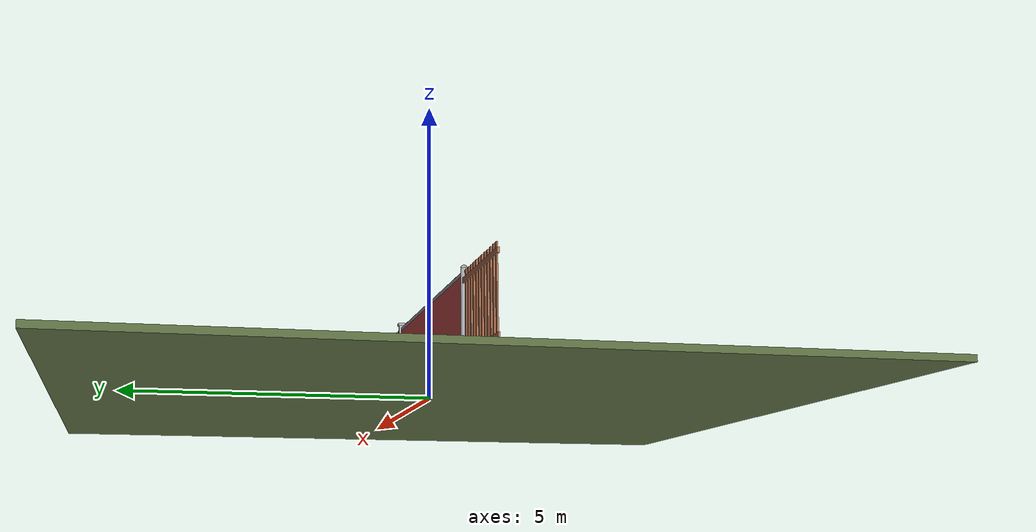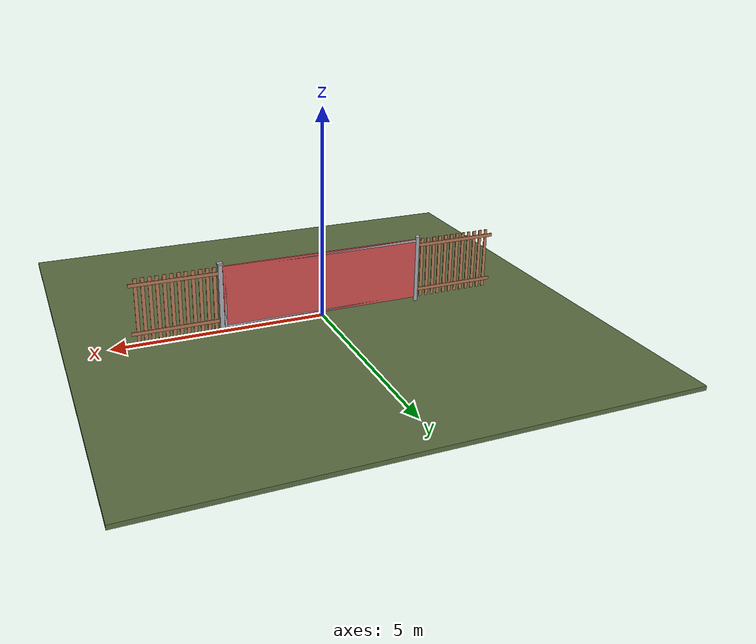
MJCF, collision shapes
<?xml version="1.0" ?>
<mujoco model="db0859_gate_swing_full">
  <compiler angle="radian" meshdir="../../hardware" texturedir="../../textures" autolimits="true" inertiafromgeom="false"/>
  <option timestep="0.002" integrator="implicitfast" cone="elliptic" impratio="10" noslip_iterations="3">
    <flag multiccd="enable"/>
  </option>
  <size memory="16M"/>
  <default>
    <geom condim="4" solref="0.005 1" solimp="0.95 0.99 0.001"/>
    <joint solreflimit="0.005 1" solimplimit="0.95 0.99 0.001"/>
    <tendon solreflimit="0.005 1"/>
    <equality solref="0.002 1"/>
  </default>
  <visual>
    <headlight ambient="0.4 0.4 0.4" diffuse="0.7 0.7 0.7" specular="0.2 0.2 0.2"/>
    <quality shadowsize="4096"/>
    <map znear="0.01" zfar="60"/>
  </visual>
  <asset>
    <mesh name="strap_hinge_3c1a7c1a5f" file="strap_hinge_3c1a7c1a5f.obj"/>
    <material name="mat_floor" rgba="0.35 0.42 0.25 1" specular="0.2" shininess="0.15" reflectance="0"/>
    <material name="mat_wall" rgba="0.78 0.76 0.7 1" specular="0.2" shininess="0.1" reflectance="0"/>
    <material name="mat_leaf" rgba="0.65 0.66 0.68 1" specular="0.74" shininess="0.5" reflectance="0.36"/>
    <material name="mat_hinge" rgba="0.65 0.66 0.68 1" specular="0.74" shininess="0.5" reflectance="0.36"/>
    <material name="mat_op_steel_galvanized" rgba="0.65 0.66 0.68 1" specular="0.74" shininess="0.5" reflectance="0.36"/>
    <material name="mat_frame" rgba="0.65 0.66 0.68 1" specular="0.74" shininess="0.5" reflectance="0.36"/>
    <material name="mat_fence" rgba="0.7 0.45 0.32 1" specular="0.2" shininess="0.4" reflectance="0"/>
    <texture name="skybox" type="skybox" builtin="gradient" rgb1="0.6 0.7 0.85" rgb2="0.9 0.92 0.95" width="256" height="256"/>
  </asset>
  <worldbody>
    <light name="sun" pos="1.5 -2.5 4" dir="-0.3 0.5 -0.8" directional="true" diffuse="0.8 0.8 0.8" specular="0.3 0.3 0.3" castshadow="true"/>
    <light name="fill" pos="-1.5 2.5 3" dir="0.3 -0.5 -0.7" directional="true" diffuse="0.35 0.35 0.4" castshadow="false"/>
    <camera name="robot_view" pos="0 -5.13625 2.19815" xyaxes="1 0 0 0 0.26963 0.962964" fovy="52"/>
    <camera name="far_view" pos="0 5.13625 2.19815" xyaxes="-1 0 0 0 -0.26963 0.962964" fovy="52"/>
    <camera name="iso" pos="3.90355 -4.31445 3.01995" xyaxes="0.741536 0.670913 0 -0.242917 0.268487 0.932151" fovy="46"/>
    <camera name="detail_handle" pos="2.539 -0.92 1.28" xyaxes="0.97561 0.219512 0 -0.070934 0.315262 0.94635" fovy="38"/>
    <geom name="floor" type="box" size="6 6 0.05" pos="0 0 -0.05" material="mat_floor" group="0" contype="1" conaffinity="1" friction="0.8 0.005 0.0001" density="2400"/>
    <geom name="hinge_pintle_0" type="cylinder" size="0.008 0.02" pos="-2.403 -0.05 0.224" material="mat_hinge" group="1" contype="0" conaffinity="0" density="7850"/>
    <geom name="hinge_pintle_1" type="cylinder" size="0.008 0.02" pos="-2.403 -0.05 1.424" material="mat_hinge" group="1" contype="0" conaffinity="0" density="7850"/>
    <geom name="leaf_slide_bolt_keeper_leg_n" type="box" size="0.007 0.0025 0.017" pos="2.426 -0.067 0.9845" quat="0.707107 0.707107 0 0" material="mat_op_steel_galvanized" group="0" contype="1" conaffinity="1" friction="0.6 0.005 0.0001" density="7800"/>
    <geom name="leaf_slide_bolt_keeper_leg_p" type="box" size="0.007 0.0025 0.017" pos="2.426 -0.067 1.0155" quat="0.707107 0.707107 0 0" material="mat_op_steel_galvanized" group="0" contype="1" conaffinity="1" friction="0.6 0.005 0.0001" density="7800"/>
    <geom name="leaf_slide_bolt_keeper_bridge" type="box" size="0.007 0.018 0.0025" pos="2.426 -0.0815 1" quat="0.707107 0.707107 0 0" material="mat_op_steel_galvanized" group="0" contype="1" conaffinity="1" friction="0.6 0.005 0.0001" density="7800"/>
    <geom name="leaf_slide_bolt_keeper_base" type="box" size="0.015 0.024 0.001" pos="2.426 -0.051 1" quat="0.707107 0.707107 0 0" material="mat_op_steel_galvanized" group="1" contype="0" conaffinity="0" density="7800"/>
    <geom name="post_hinge" type="cylinder" size="0.05 0.825" pos="-2.456 0 0.825" material="mat_frame" group="0" contype="1" conaffinity="1" friction="0.6 0.005 0.0001" density="800"/>
    <geom name="post_hinge_cap" type="sphere" size="0.05" pos="-2.456 0 1.65" material="mat_frame" group="1" contype="0" conaffinity="0" density="800"/>
    <geom name="post_latch" type="box" size="0.05 0.05 0.825" pos="2.456 0 0.825" material="mat_frame" group="0" contype="1" conaffinity="1" friction="0.6 0.005 0.0001" density="800"/>
    <geom name="post_latch_cap" type="box" size="0.065 0.065 0.02" pos="2.456 0 1.67" material="mat_frame" group="1" contype="0" conaffinity="0" density="800"/>
    <geom name="gate_stop" type="box" size="0.02 0.012 0.06" pos="2.386 0.0345 0.35" material="mat_frame" group="0" contype="1" conaffinity="1" friction="0.6 0.005 0.0001" density="800"/>
    <geom name="fence_picket_l_0" type="box" size="0.04 0.01 0.75" pos="-2.586 0 0.85" material="mat_fence" group="0" contype="1" conaffinity="1" friction="0.6 0.005 0.0001" density="400"/>
    <geom name="fence_picket_l_1" type="box" size="0.04 0.01 0.75" pos="-2.746 0 0.85" material="mat_fence" group="0" contype="1" conaffinity="1" friction="0.6 0.005 0.0001" density="400"/>
    <geom name="fence_picket_l_2" type="box" size="0.04 0.01 0.75" pos="-2.906 0 0.85" material="mat_fence" group="0" contype="1" conaffinity="1" friction="0.6 0.005 0.0001" density="400"/>
    <geom name="fence_picket_l_3" type="box" size="0.04 0.01 0.75" pos="-3.066 0 0.85" material="mat_fence" group="0" contype="1" conaffinity="1" friction="0.6 0.005 0.0001" density="400"/>
    <geom name="fence_picket_l_4" type="box" size="0.04 0.01 0.75" pos="-3.226 0 0.85" material="mat_fence" group="0" contype="1" conaffinity="1" friction="0.6 0.005 0.0001" density="400"/>
    <geom name="fence_picket_l_5" type="box" size="0.04 0.01 0.75" pos="-3.386 0 0.85" material="mat_fence" group="0" contype="1" conaffinity="1" friction="0.6 0.005 0.0001" density="400"/>
    <geom name="fence_picket_l_6" type="box" size="0.04 0.01 0.75" pos="-3.546 0 0.85" material="mat_fence" group="0" contype="1" conaffinity="1" friction="0.6 0.005 0.0001" density="400"/>
    <geom name="fence_picket_l_7" type="box" size="0.04 0.01 0.75" pos="-3.706 0 0.85" material="mat_fence" group="0" contype="1" conaffinity="1" friction="0.6 0.005 0.0001" density="400"/>
    <geom name="fence_picket_l_8" type="box" size="0.04 0.01 0.75" pos="-3.866 0 0.85" material="mat_fence" group="0" contype="1" conaffinity="1" friction="0.6 0.005 0.0001" density="400"/>
    <geom name="fence_picket_l_9" type="box" size="0.04 0.01 0.75" pos="-4.026 0 0.85" material="mat_fence" group="0" contype="1" conaffinity="1" friction="0.6 0.005 0.0001" density="400"/>
    <geom name="fence_picket_l_10" type="box" size="0.04 0.01 0.75" pos="-4.186 0 0.85" material="mat_fence" group="0" contype="1" conaffinity="1" friction="0.6 0.005 0.0001" density="400"/>
    <geom name="fence_picket_l_11" type="box" size="0.04 0.01 0.75" pos="-4.346 0 0.85" material="mat_fence" group="0" contype="1" conaffinity="1" friction="0.6 0.005 0.0001" density="400"/>
    <geom name="fence_rail_l" type="box" size="1 0.015 0.04" pos="-3.506 0.015 1.45" material="mat_fence" group="0" contype="1" conaffinity="1" friction="0.6 0.005 0.0001" density="400"/>
    <geom name="fence_rail_b_l" type="box" size="1 0.015 0.04" pos="-3.506 0.015 0.3" material="mat_fence" group="0" contype="1" conaffinity="1" friction="0.6 0.005 0.0001" density="400"/>
    <geom name="fence_picket_r_0" type="box" size="0.04 0.01 0.75" pos="2.586 0 0.85" material="mat_fence" group="0" contype="1" conaffinity="1" friction="0.6 0.005 0.0001" density="400"/>
    <geom name="fence_picket_r_1" type="box" size="0.04 0.01 0.75" pos="2.746 0 0.85" material="mat_fence" group="0" contype="1" conaffinity="1" friction="0.6 0.005 0.0001" density="400"/>
    <geom name="fence_picket_r_2" type="box" size="0.04 0.01 0.75" pos="2.906 0 0.85" material="mat_fence" group="0" contype="1" conaffinity="1" friction="0.6 0.005 0.0001" density="400"/>
    <geom name="fence_picket_r_3" type="box" size="0.04 0.01 0.75" pos="3.066 0 0.85" material="mat_fence" group="0" contype="1" conaffinity="1" friction="0.6 0.005 0.0001" density="400"/>
    <geom name="fence_picket_r_4" type="box" size="0.04 0.01 0.75" pos="3.226 0 0.85" material="mat_fence" group="0" contype="1" conaffinity="1" friction="0.6 0.005 0.0001" density="400"/>
    <geom name="fence_picket_r_5" type="box" size="0.04 0.01 0.75" pos="3.386 0 0.85" material="mat_fence" group="0" contype="1" conaffinity="1" friction="0.6 0.005 0.0001" density="400"/>
    <geom name="fence_picket_r_6" type="box" size="0.04 0.01 0.75" pos="3.546 0 0.85" material="mat_fence" group="0" contype="1" conaffinity="1" friction="0.6 0.005 0.0001" density="400"/>
    <geom name="fence_picket_r_7" type="box" size="0.04 0.01 0.75" pos="3.706 0 0.85" material="mat_fence" group="0" contype="1" conaffinity="1" friction="0.6 0.005 0.0001" density="400"/>
    <geom name="fence_picket_r_8" type="box" size="0.04 0.01 0.75" pos="3.866 0 0.85" material="mat_fence" group="0" contype="1" conaffinity="1" friction="0.6 0.005 0.0001" density="400"/>
    <geom name="fence_picket_r_9" type="box" size="0.04 0.01 0.75" pos="4.026 0 0.85" material="mat_fence" group="0" contype="1" conaffinity="1" friction="0.6 0.005 0.0001" density="400"/>
    <geom name="fence_picket_r_10" type="box" size="0.04 0.01 0.75" pos="4.186 0 0.85" material="mat_fence" group="0" contype="1" conaffinity="1" friction="0.6 0.005 0.0001" density="400"/>
    <geom name="fence_picket_r_11" type="box" size="0.04 0.01 0.75" pos="4.346 0 0.85" material="mat_fence" group="0" contype="1" conaffinity="1" friction="0.6 0.005 0.0001" density="400"/>
    <geom name="fence_rail_r" type="box" size="1 0.015 0.04" pos="3.506 0.015 1.45" material="mat_fence" group="0" contype="1" conaffinity="1" friction="0.6 0.005 0.0001" density="400"/>
    <geom name="fence_rail_b_r" type="box" size="1 0.015 0.04" pos="3.506 0.015 0.3" material="mat_fence" group="0" contype="1" conaffinity="1" friction="0.6 0.005 0.0001" density="400"/>
    <geom name="gate_stop_strap_0" type="box" size="0.0505 0.0096 0.048" pos="2.456 0.0345 0.35" material="mat_frame" group="1" contype="0" conaffinity="0" density="7850"/>
    <site name="approach_point" pos="0 -1.5 0" quat="1 0 0 0" size="0.05" rgba="0.2 0.9 0.2 0.5" group="4"/>
    <site name="goal_point" pos="0 1.5 0" quat="1 0 0 0" size="0.05" rgba="0.2 0.9 0.2 0.5" group="4"/>
    <site name="door_plane_center" pos="0 0 0.76" quat="1 0 0 0" size="0.02" rgba="0.2 0.9 0.2 0.5" group="4"/>
    <body name="leaf" pos="-2.406 0 0">
      <inertial pos="2.38502 -0.000522 0.850656" mass="97.066675" quat="0.70706 0.707154 -0.000209 0.000373" diaginertia="18.351196806 191.83187511 210.146968334"/>
      <joint name="leaf_hinge" type="hinge" axis="0 0 -1" pos="0.003 -0.05 0" limited="true" range="0 1.745329" damping="143.854989" frictionloss="6.975196" armature="0.02"/>
      <geom name="leaf_slab_col" type="box" size="2.4 0.0225 0.75" pos="2.403 0 0.85" material="mat_leaf" group="3" contype="1" conaffinity="1" rgba="0.8 0.3 0.3 0.25" friction="0.42 0.005 0.0001" density="1"/>
      <geom name="leaf_rail_b" type="box" size="2.4 0.0225 0.03" pos="2.403 0 0.13" material="mat_leaf" group="1" contype="0" conaffinity="0" density="1"/>
      <geom name="leaf_rail_t" type="box" size="2.4 0.0225 0.03" pos="2.403 0 1.57" material="mat_leaf" group="1" contype="0" conaffinity="0" density="1"/>
      <geom name="leaf_stile_h" type="box" size="0.03 0.0225 0.75" pos="0.033 0 0.85" material="mat_leaf" group="1" contype="0" conaffinity="0" density="1"/>
      <geom name="leaf_stile_l" type="box" size="0.03 0.0225 0.75" pos="4.773 0 0.85" material="mat_leaf" group="1" contype="0" conaffinity="0" density="1"/>
      <geom name="leaf_bar_0" type="cylinder" size="0.0095 0.69" pos="0.128 0 0.85" material="mat_leaf" group="1" contype="0" conaffinity="0" density="1"/>
      <geom name="leaf_bar_1" type="cylinder" size="0.0095 0.69" pos="0.258 0 0.85" material="mat_leaf" group="1" contype="0" conaffinity="0" density="1"/>
      <geom name="leaf_bar_2" type="cylinder" size="0.0095 0.69" pos="0.388 0 0.85" material="mat_leaf" group="1" contype="0" conaffinity="0" density="1"/>
      <geom name="leaf_bar_3" type="cylinder" size="0.0095 0.69" pos="0.518 0 0.85" material="mat_leaf" group="1" contype="0" conaffinity="0" density="1"/>
      <geom name="leaf_bar_4" type="cylinder" size="0.0095 0.69" pos="0.648 0 0.85" material="mat_leaf" group="1" contype="0" conaffinity="0" density="1"/>
      <geom name="leaf_bar_5" type="cylinder" size="0.0095 0.69" pos="0.778 0 0.85" material="mat_leaf" group="1" contype="0" conaffinity="0" density="1"/>
      <geom name="leaf_bar_6" type="cylinder" size="0.0095 0.69" pos="0.908 0 0.85" material="mat_leaf" group="1" contype="0" conaffinity="0" density="1"/>
      <geom name="leaf_bar_7" type="cylinder" size="0.0095 0.69" pos="1.038 0 0.85" material="mat_leaf" group="1" contype="0" conaffinity="0" density="1"/>
      <geom name="leaf_bar_8" type="cylinder" size="0.0095 0.69" pos="1.168 0 0.85" material="mat_leaf" group="1" contype="0" conaffinity="0" density="1"/>
      <geom name="leaf_bar_9" type="cylinder" size="0.0095 0.69" pos="1.298 0 0.85" material="mat_leaf" group="1" contype="0" conaffinity="0" density="1"/>
      <geom name="leaf_bar_10" type="cylinder" size="0.0095 0.69" pos="1.428 0 0.85" material="mat_leaf" group="1" contype="0" conaffinity="0" density="1"/>
      <geom name="leaf_bar_11" type="cylinder" size="0.0095 0.69" pos="1.558 0 0.85" material="mat_leaf" group="1" contype="0" conaffinity="0" density="1"/>
      <geom name="leaf_bar_12" type="cylinder" size="0.0095 0.69" pos="1.688 0 0.85" material="mat_leaf" group="1" contype="0" conaffinity="0" density="1"/>
      <geom name="leaf_bar_13" type="cylinder" size="0.0095 0.69" pos="1.818 0 0.85" material="mat_leaf" group="1" contype="0" conaffinity="0" density="1"/>
      <geom name="leaf_bar_14" type="cylinder" size="0.0095 0.69" pos="1.948 0 0.85" material="mat_leaf" group="1" contype="0" conaffinity="0" density="1"/>
      <geom name="leaf_bar_15" type="cylinder" size="0.0095 0.69" pos="2.078 0 0.85" material="mat_leaf" group="1" contype="0" conaffinity="0" density="1"/>
      <geom name="leaf_bar_16" type="cylinder" size="0.0095 0.69" pos="2.208 0 0.85" material="mat_leaf" group="1" contype="0" conaffinity="0" density="1"/>
      <geom name="leaf_bar_17" type="cylinder" size="0.0095 0.69" pos="2.338 0 0.85" material="mat_leaf" group="1" contype="0" conaffinity="0" density="1"/>
      <geom name="leaf_bar_18" type="cylinder" size="0.0095 0.69" pos="2.468 0 0.85" material="mat_leaf" group="1" contype="0" conaffinity="0" density="1"/>
      <geom name="leaf_bar_19" type="cylinder" size="0.0095 0.69" pos="2.598 0 0.85" material="mat_leaf" group="1" contype="0" conaffinity="0" density="1"/>
      <geom name="leaf_bar_20" type="cylinder" size="0.0095 0.69" pos="2.728 0 0.85" material="mat_leaf" group="1" contype="0" conaffinity="0" density="1"/>
      <geom name="leaf_bar_21" type="cylinder" size="0.0095 0.69" pos="2.858 0 0.85" material="mat_leaf" group="1" contype="0" conaffinity="0" density="1"/>
      <geom name="leaf_bar_22" type="cylinder" size="0.0095 0.69" pos="2.988 0 0.85" material="mat_leaf" group="1" contype="0" conaffinity="0" density="1"/>
      <geom name="leaf_bar_23" type="cylinder" size="0.0095 0.69" pos="3.118 0 0.85" material="mat_leaf" group="1" contype="0" conaffinity="0" density="1"/>
      <geom name="leaf_bar_24" type="cylinder" size="0.0095 0.69" pos="3.248 0 0.85" material="mat_leaf" group="1" contype="0" conaffinity="0" density="1"/>
      <geom name="leaf_bar_25" type="cylinder" size="0.0095 0.69" pos="3.378 0 0.85" material="mat_leaf" group="1" contype="0" conaffinity="0" density="1"/>
      <geom name="leaf_bar_26" type="cylinder" size="0.0095 0.69" pos="3.508 0 0.85" material="mat_leaf" group="1" contype="0" conaffinity="0" density="1"/>
      <geom name="leaf_bar_27" type="cylinder" size="0.0095 0.69" pos="3.638 0 0.85" material="mat_leaf" group="1" contype="0" conaffinity="0" density="1"/>
      <geom name="leaf_bar_28" type="cylinder" size="0.0095 0.69" pos="3.768 0 0.85" material="mat_leaf" group="1" contype="0" conaffinity="0" density="1"/>
      <geom name="leaf_bar_29" type="cylinder" size="0.0095 0.69" pos="3.898 0 0.85" material="mat_leaf" group="1" contype="0" conaffinity="0" density="1"/>
      <geom name="leaf_bar_30" type="cylinder" size="0.0095 0.69" pos="4.028 0 0.85" material="mat_leaf" group="1" contype="0" conaffinity="0" density="1"/>
      <geom name="leaf_bar_31" type="cylinder" size="0.0095 0.69" pos="4.158 0 0.85" material="mat_leaf" group="1" contype="0" conaffinity="0" density="1"/>
      <geom name="leaf_bar_32" type="cylinder" size="0.0095 0.69" pos="4.288 0 0.85" material="mat_leaf" group="1" contype="0" conaffinity="0" density="1"/>
      <geom name="leaf_bar_33" type="cylinder" size="0.0095 0.69" pos="4.418 0 0.85" material="mat_leaf" group="1" contype="0" conaffinity="0" density="1"/>
      <geom name="leaf_bar_34" type="cylinder" size="0.0095 0.69" pos="4.548 0 0.85" material="mat_leaf" group="1" contype="0" conaffinity="0" density="1"/>
      <geom name="leaf_bar_35" type="cylinder" size="0.0095 0.69" pos="4.678 0 0.85" material="mat_leaf" group="1" contype="0" conaffinity="0" density="1"/>
      <geom name="leaf_crossbar_33" type="box" size="2.34 0.018 0.02" pos="2.403 0 0.595" material="mat_leaf" group="1" contype="0" conaffinity="0" density="1"/>
      <geom name="leaf_crossbar_66" type="box" size="2.34 0.018 0.02" pos="2.403 0 1.09" material="mat_leaf" group="1" contype="0" conaffinity="0" density="1"/>
      <geom name="hinge_strap_0" type="mesh" mesh="strap_hinge_3c1a7c1a5f" pos="0.003 -0.0255 0.25" material="mat_hinge" group="1" contype="0" conaffinity="0" density="7850"/>
      <geom name="hinge_strap_eye_0" type="cylinder" size="0.011 0.012" pos="0.003 -0.05 0.25" material="mat_hinge" group="1" contype="0" conaffinity="0" density="7850"/>
      <geom name="hinge_strap_neck_0" type="box" size="0.012 0.01625 0.006" pos="0.003 -0.03775 0.25" material="mat_hinge" group="1" contype="0" conaffinity="0" density="7850"/>
      <geom name="hinge_strap_1" type="mesh" mesh="strap_hinge_3c1a7c1a5f" pos="0.003 -0.0255 1.45" material="mat_hinge" group="1" contype="0" conaffinity="0" density="7850"/>
      <geom name="hinge_strap_eye_1" type="cylinder" size="0.011 0.012" pos="0.003 -0.05 1.45" material="mat_hinge" group="1" contype="0" conaffinity="0" density="7850"/>
      <geom name="hinge_strap_neck_1" type="box" size="0.012 0.01625 0.006" pos="0.003 -0.03775 1.45" material="mat_hinge" group="1" contype="0" conaffinity="0" density="7850"/>
      <geom name="leaf_slide_bolt_plate" type="box" size="0.1715 0.023 0.001" pos="4.6235 -0.0235 1" quat="0.707107 0.707107 0 0" material="mat_op_steel_galvanized" group="1" contype="0" conaffinity="0" density="7800"/>
      <geom name="leaf_slide_bolt_guide_0_leg_n" type="box" size="0.006 0.002 0.03025" pos="4.787 -0.05275 0.985" quat="0.707107 0.707107 0 0" material="mat_op_steel_galvanized" group="1" contype="0" conaffinity="0" density="7800"/>
      <geom name="leaf_slide_bolt_guide_0_leg_p" type="box" size="0.006 0.002 0.03025" pos="4.787 -0.05275 1.015" quat="0.707107 0.707107 0 0" material="mat_op_steel_galvanized" group="1" contype="0" conaffinity="0" density="7800"/>
      <geom name="leaf_slide_bolt_guide_0_bridge" type="box" size="0.006 0.017 0.002" pos="4.787 -0.081 1" quat="0.707107 0.707107 0 0" material="mat_op_steel_galvanized" group="1" contype="0" conaffinity="0" density="7800"/>
      <geom name="leaf_slide_bolt_guide_1_leg_n" type="box" size="0.006 0.002 0.03025" pos="4.462 -0.05275 0.985" quat="0.707107 0.707107 0 0" material="mat_op_steel_galvanized" group="1" contype="0" conaffinity="0" density="7800"/>
      <geom name="leaf_slide_bolt_guide_1_leg_p" type="box" size="0.006 0.002 0.03025" pos="4.462 -0.05275 1.015" quat="0.707107 0.707107 0 0" material="mat_op_steel_galvanized" group="1" contype="0" conaffinity="0" density="7800"/>
      <geom name="leaf_slide_bolt_guide_1_bridge" type="box" size="0.006 0.017 0.002" pos="4.462 -0.081 1" quat="0.707107 0.707107 0 0" material="mat_op_steel_galvanized" group="1" contype="0" conaffinity="0" density="7800"/>
      <geom name="leaf_slide_bolt_guide_2_leg_n" type="box" size="0.006 0.002 0.03025" pos="4.6245 -0.05275 0.985" quat="0.707107 0.707107 0 0" material="mat_op_steel_galvanized" group="1" contype="0" conaffinity="0" density="7800"/>
      <geom name="leaf_slide_bolt_guide_2_leg_p" type="box" size="0.006 0.002 0.03025" pos="4.6245 -0.05275 1.015" quat="0.707107 0.707107 0 0" material="mat_op_steel_galvanized" group="1" contype="0" conaffinity="0" density="7800"/>
      <geom name="leaf_slide_bolt_guide_2_bridge" type="box" size="0.006 0.017 0.002" pos="4.6245 -0.081 1" quat="0.707107 0.707107 0 0" material="mat_op_steel_galvanized" group="1" contype="0" conaffinity="0" density="7800"/>
      <site name="leaf_edge_mid" pos="4.803 0 0.75" quat="1 0 0 0" size="0.02" rgba="0.2 0.9 0.2 0.5" group="4"/>
      <body name="leaf_slide_bolt" pos="4.803 -0.066 1">
        <inertial pos="-0.099487 -0.004589 0" mass="0.835325" quat="0.999773 0 0 -0.021294" diaginertia="0.000170793 0.005711729 0.0058426"/>
        <joint name="leaf_slide_bolt_slide" type="slide" axis="-1 0 0" limited="true" range="0 0.08" damping="1" frictionloss="3" armature="0.1"/>
        <geom name="leaf_slide_bolt_rod" type="capsule" size="0.01 0.14" pos="-0.109 0 0" quat="0.707107 0 0.707107 0" material="mat_op_steel_galvanized" group="0" contype="1" conaffinity="1" friction="0.6 0.005 0.0001" density="7850"/>
        <geom name="leaf_slide_bolt_knob" type="capsule" size="0.008 0.017" pos="-0.038 -0.025 0" quat="0.707107 0.707107 0 0" material="mat_op_steel_galvanized" group="0" contype="1" conaffinity="1" friction="0.6 0.005 0.0001" density="7850"/>
        <geom name="leaf_slide_bolt_knob_end" type="sphere" size="0.0108" pos="-0.038 -0.05 0" material="mat_op_steel_galvanized" group="1" contype="0" conaffinity="0" density="7850"/>
        <site name="leaf_grip_n" pos="-0.038 -0.054 0" quat="1 0 0 0" size="0.012" rgba="0.2 0.9 0.2 0.5" group="4"/>
      </body>
    </body>
  </worldbody>
  <sensor>
    <jointpos name="leaf_hinge_pos" joint="leaf_hinge"/>
    <jointvel name="leaf_hinge_vel" joint="leaf_hinge"/>
    <jointpos name="leaf_slide_bolt_slide_pos" joint="leaf_slide_bolt_slide"/>
    <jointvel name="leaf_slide_bolt_slide_vel" joint="leaf_slide_bolt_slide"/>
  </sensor>
</mujoco>
